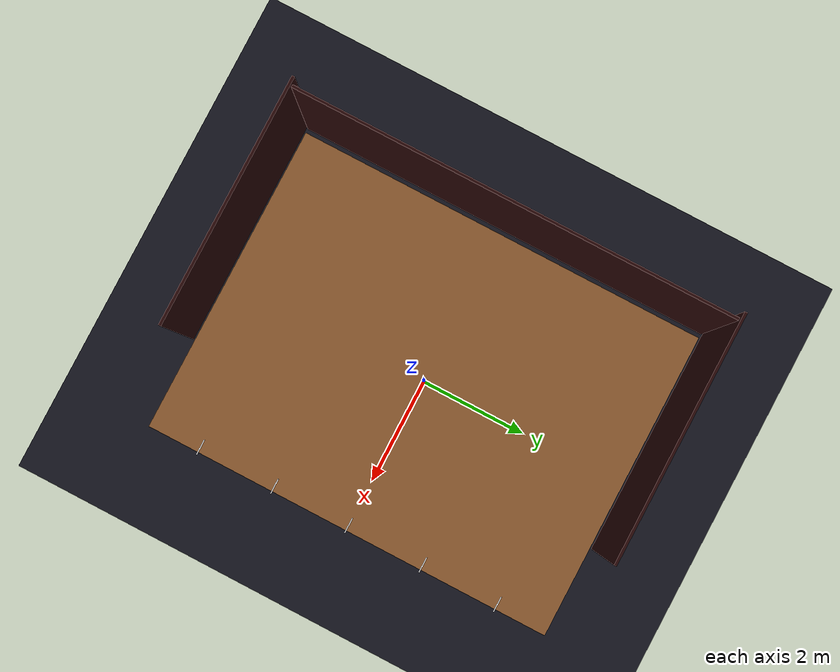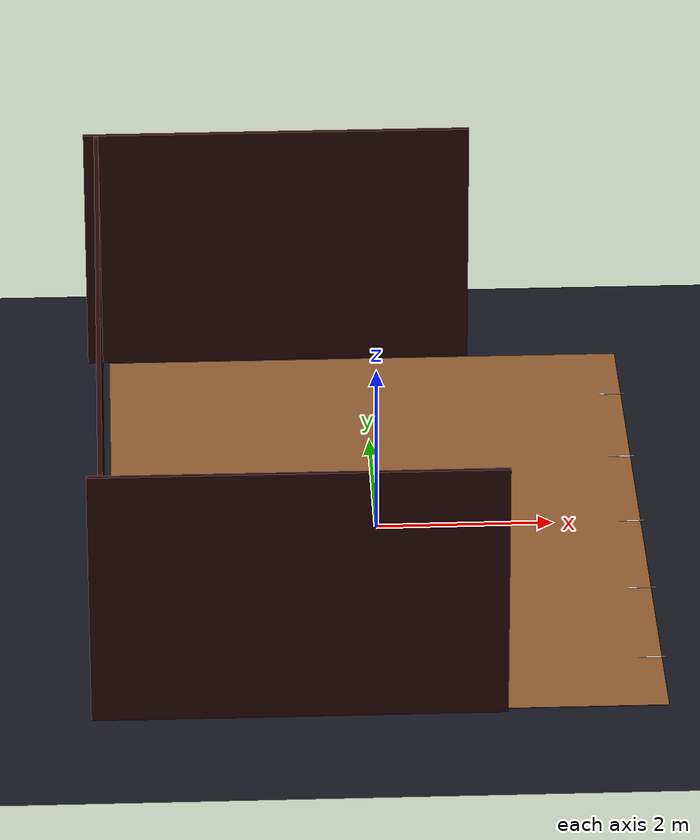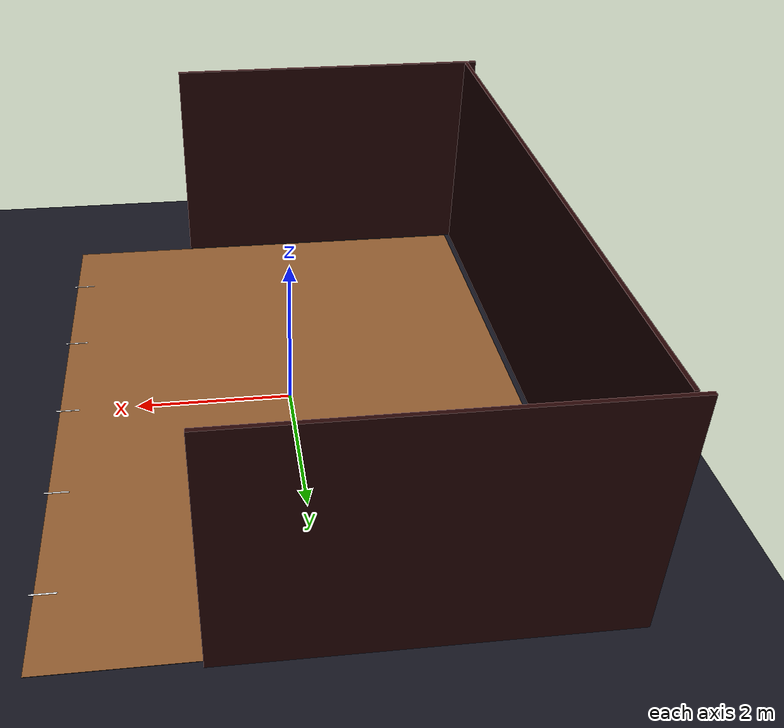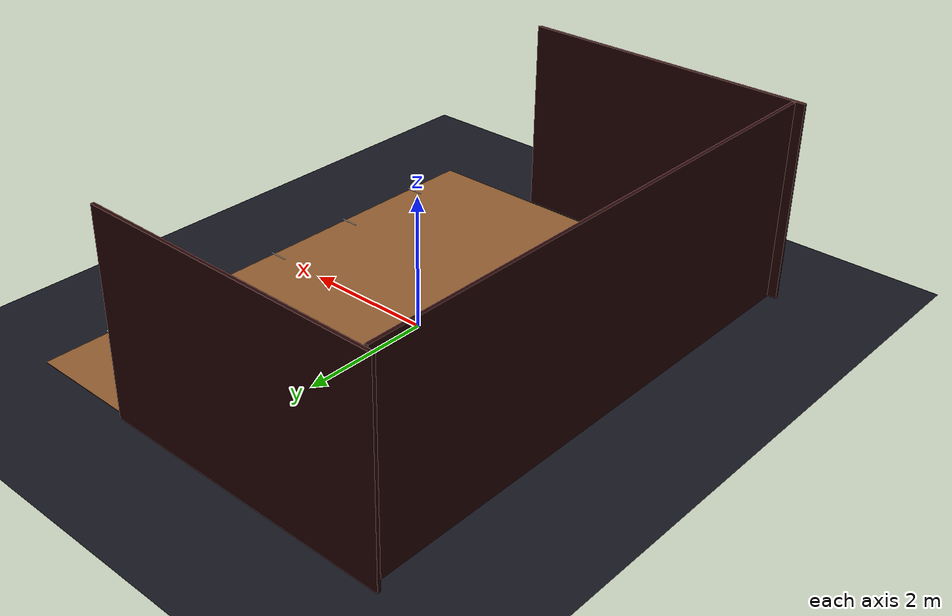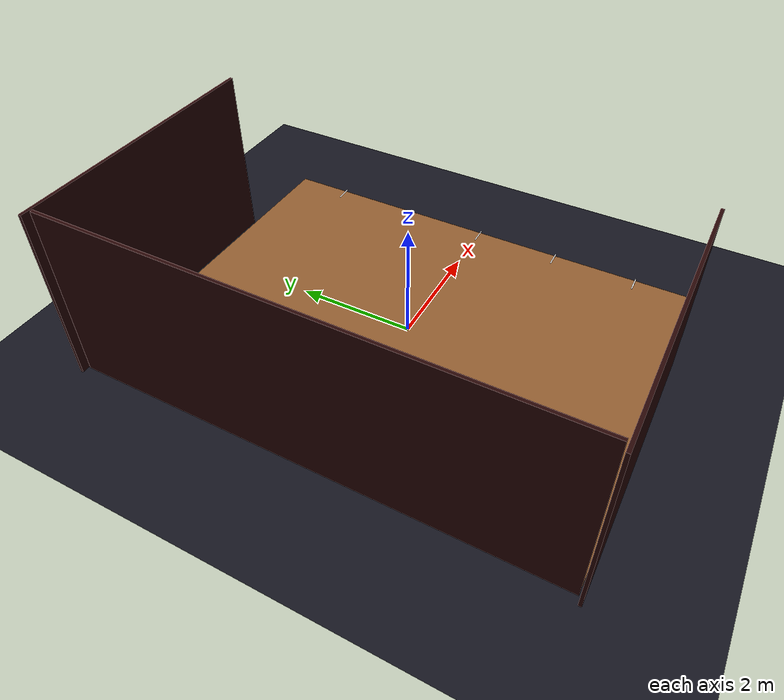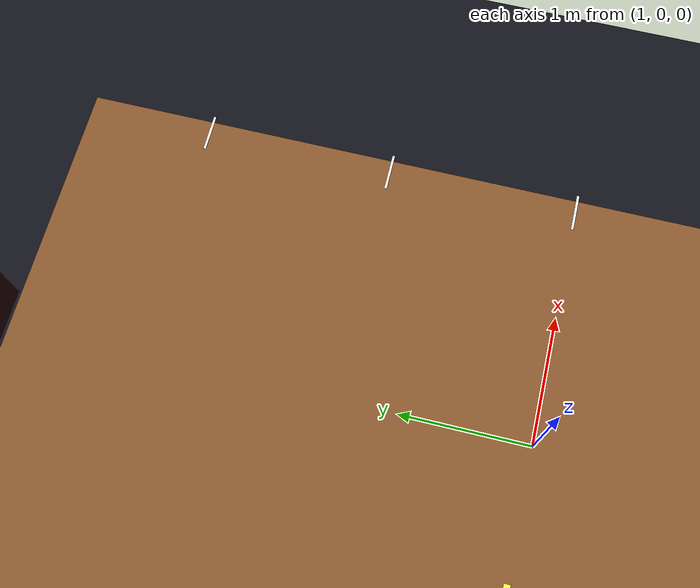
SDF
<?xml version="1.0" ?>
<sdf version="1.7">
  <world name="dance_stage">

    <!-- Gz Sim required system plugins -->
    <plugin filename="gz-sim-physics-system"
            name="gz::sim::systems::Physics"/>
    <plugin filename="gz-sim-scene-broadcaster-system"
            name="gz::sim::systems::SceneBroadcaster"/>
    <plugin filename="gz-sim-user-commands-system"
            name="gz::sim::systems::UserCommands"/>

    <!-- ── Physics ──────────────────────────────────────────────────────── -->
    <physics name="default_physics" type="ode">
      <max_step_size>0.002</max_step_size>
      <real_time_factor>1.0</real_time_factor>
      <real_time_update_rate>500</real_time_update_rate>
    </physics>

    <!-- ── Lighting ─────────────────────────────────────────────────────── -->

    <!-- Main overhead (warm stage light) -->
    <light type="directional" name="stage_overhead">
      <cast_shadows>true</cast_shadows>
      <pose>0 0 8 0 0 0</pose>
      <diffuse>1.0 0.95 0.85 1</diffuse>
      <specular>0.5 0.48 0.42 1</specular>
      <direction>0.0 0.0 -1.0</direction>
      <attenuation>
        <range>30</range>
        <constant>0.3</constant>
        <linear>0.01</linear>
        <quadratic>0.001</quadratic>
      </attenuation>
    </light>

    <!-- Stage left spot (warm amber) -->
    <light type="spot" name="spot_left">
      <pose>-3 3 5 0 0.6 -0.5</pose>
      <diffuse>1.0 0.7 0.3 1</diffuse>
      <specular>0.5 0.35 0.15 1</specular>
      <direction>0.3 -0.3 -1.0</direction>
      <attenuation>
        <range>15</range>
        <constant>0.1</constant>
        <linear>0.05</linear>
        <quadratic>0.01</quadratic>
      </attenuation>
      <spot>
        <inner_angle>0.5</inner_angle>
        <outer_angle>1.0</outer_angle>
        <falloff>1.0</falloff>
      </spot>
    </light>

    <!-- Stage right spot (cool blue) -->
    <light type="spot" name="spot_right">
      <pose>-3 -3 5 0 0.6 0.5</pose>
      <diffuse>0.4 0.6 1.0 1</diffuse>
      <specular>0.2 0.3 0.5 1</specular>
      <direction>0.3 0.3 -1.0</direction>
      <attenuation>
        <range>15</range>
        <constant>0.1</constant>
        <linear>0.05</linear>
        <quadratic>0.01</quadratic>
      </attenuation>
      <spot>
        <inner_angle>0.5</inner_angle>
        <outer_angle>1.0</outer_angle>
        <falloff>1.0</falloff>
      </spot>
    </light>

    <!-- Ambient fill -->
    <light type="directional" name="ambient_fill">
      <pose>0 0 10 0 0 0</pose>
      <diffuse>0.15 0.15 0.2 1</diffuse>
      <specular>0.0 0.0 0.0 1</specular>
      <direction>0 0 -1</direction>
    </light>

    <!-- ── Ground plane (beneath the stage) ─────────────────────────────── -->
    <model name="ground_plane">
      <static>true</static>
      <link name="ground_link">
        <collision name="ground_collision">
          <geometry>
            <plane><normal>0 0 1</normal><size>50 50</size></plane>
          </geometry>
          <surface>
            <friction>
              <ode><mu>1.0</mu><mu2>1.0</mu2></ode>
            </friction>
          </surface>
        </collision>
        <visual name="ground_visual">
          <geometry>
            <plane><normal>0 0 1</normal><size>50 50</size></plane>
          </geometry>
          <material>
            <ambient>0.05 0.05 0.08 1</ambient>
            <diffuse>0.08 0.08 0.12 1</diffuse>
          </material>
        </visual>
      </link>
    </model>

    <!-- ── Stage platform (raised wooden floor) ─────────────────────────── -->
    <model name="stage_floor">
      <static>true</static>
      <pose>0 0 0.0 0 0 0</pose>
      <link name="stage_link">
        <!-- Main stage surface -->
        <collision name="stage_collision">
          <geometry>
            <box><size>6.0 8.0 0.005</size></box>
          </geometry>
          <surface>
            <friction>
              <ode><mu>0.8</mu><mu2>0.8</mu2></ode>
            </friction>
          </surface>
        </collision>
        <visual name="stage_visual">
          <geometry>
            <box><size>6.0 8.0 0.005</size></box>
          </geometry>
          <material>
            <ambient>0.35 0.22 0.10 1</ambient>
            <diffuse>0.55 0.35 0.18 1</diffuse>
            <specular>0.15 0.12 0.08 1</specular>
          </material>
        </visual>
      </link>
    </model>

    <!-- ── Backdrop curtain (back wall) ─────────────────────────────────── -->
    <model name="backdrop">
      <static>true</static>
      <pose>-3.1 0 1.5 0 0 0</pose>
      <link name="backdrop_link">
        <visual name="backdrop_visual">
          <geometry>
            <box><size>0.05 8.0 3.0</size></box>
          </geometry>
          <material>
            <ambient>0.05 0.02 0.02 1</ambient>
            <diffuse>0.15 0.02 0.02 1</diffuse>
          </material>
        </visual>
        <collision name="backdrop_collision">
          <geometry>
            <box><size>0.05 8.0 3.0</size></box>
          </geometry>
        </collision>
      </link>
    </model>

    <!-- ── Side curtains ────────────────────────────────────────────────── -->
    <model name="curtain_left">
      <static>true</static>
      <pose>-1.0 4.05 1.5 0 0 0</pose>
      <link name="curtain_link">
        <visual name="curtain_visual">
          <geometry><box><size>4.5 0.05 3.0</size></box></geometry>
          <material>
            <ambient>0.05 0.02 0.02 1</ambient>
            <diffuse>0.15 0.02 0.02 1</diffuse>
          </material>
        </visual>
        <collision name="curtain_collision">
          <geometry><box><size>4.5 0.05 3.0</size></box></geometry>
        </collision>
      </link>
    </model>

    <model name="curtain_right">
      <static>true</static>
      <pose>-1.0 -4.05 1.5 0 0 0</pose>
      <link name="curtain_link">
        <visual name="curtain_visual">
          <geometry><box><size>4.5 0.05 3.0</size></box></geometry>
          <material>
            <ambient>0.05 0.02 0.02 1</ambient>
            <diffuse>0.15 0.02 0.02 1</diffuse>
          </material>
        </visual>
        <collision name="curtain_collision">
          <geometry><box><size>4.5 0.05 3.0</size></box></geometry>
        </collision>
      </link>
    </model>

    <!-- ── Stage edge markers (tape lines, like real dance stages) ────── -->
    <model name="center_mark">
      <static>true</static>
      <pose>0 0 0.006 0 0 0</pose>
      <link name="mark_link">
        <visual name="mark_visual">
          <geometry><box><size>0.05 0.05 0.001</size></box></geometry>
          <material>
            <ambient>0.8 0.8 0.2 1</ambient>
            <diffuse>1.0 1.0 0.3 1</diffuse>
            <emissive>0.3 0.3 0.1 1</emissive>
          </material>
        </visual>
      </link>
    </model>

    <!-- Downstage edge markers (audience-facing, 5 small marks) -->
    <model name="ds_mark_1"><static>true</static>
      <pose>2.9 -3.0 0.006 0 0 0</pose>
      <link name="l"><visual name="v"><geometry><box><size>0.3 0.02 0.001</size></box></geometry>
        <material><ambient>0.8 0.8 0.8 1</ambient><diffuse>1 1 1 1</diffuse><emissive>0.2 0.2 0.2 1</emissive></material>
      </visual></link>
    </model>
    <model name="ds_mark_2"><static>true</static>
      <pose>2.9 -1.5 0.006 0 0 0</pose>
      <link name="l"><visual name="v"><geometry><box><size>0.3 0.02 0.001</size></box></geometry>
        <material><ambient>0.8 0.8 0.8 1</ambient><diffuse>1 1 1 1</diffuse><emissive>0.2 0.2 0.2 1</emissive></material>
      </visual></link>
    </model>
    <model name="ds_mark_3"><static>true</static>
      <pose>2.9 0.0 0.006 0 0 0</pose>
      <link name="l"><visual name="v"><geometry><box><size>0.3 0.02 0.001</size></box></geometry>
        <material><ambient>0.8 0.8 0.8 1</ambient><diffuse>1 1 1 1</diffuse><emissive>0.2 0.2 0.2 1</emissive></material>
      </visual></link>
    </model>
    <model name="ds_mark_4"><static>true</static>
      <pose>2.9 1.5 0.006 0 0 0</pose>
      <link name="l"><visual name="v"><geometry><box><size>0.3 0.02 0.001</size></box></geometry>
        <material><ambient>0.8 0.8 0.8 1</ambient><diffuse>1 1 1 1</diffuse><emissive>0.2 0.2 0.2 1</emissive></material>
      </visual></link>
    </model>
    <model name="ds_mark_5"><static>true</static>
      <pose>2.9 3.0 0.006 0 0 0</pose>
      <link name="l"><visual name="v"><geometry><box><size>0.3 0.02 0.001</size></box></geometry>
        <material><ambient>0.8 0.8 0.8 1</ambient><diffuse>1 1 1 1</diffuse><emissive>0.2 0.2 0.2 1</emissive></material>
      </visual></link>
    </model>

    <!-- ── Camera viewpoint (audience perspective) ──────────────────────── -->
    <gui fullscreen="0">
      <plugin filename="GzScene3D" name="3D View">
        <gz-gui>
          <title>3D View</title>
        </gz-gui>
        <engine>ogre2</engine>
        <scene>scene</scene>
        <camera_pose>5.5 0 2.5 0 0.3 3.14159</camera_pose>
      </plugin>
    </gui>

  </world>
</sdf>
